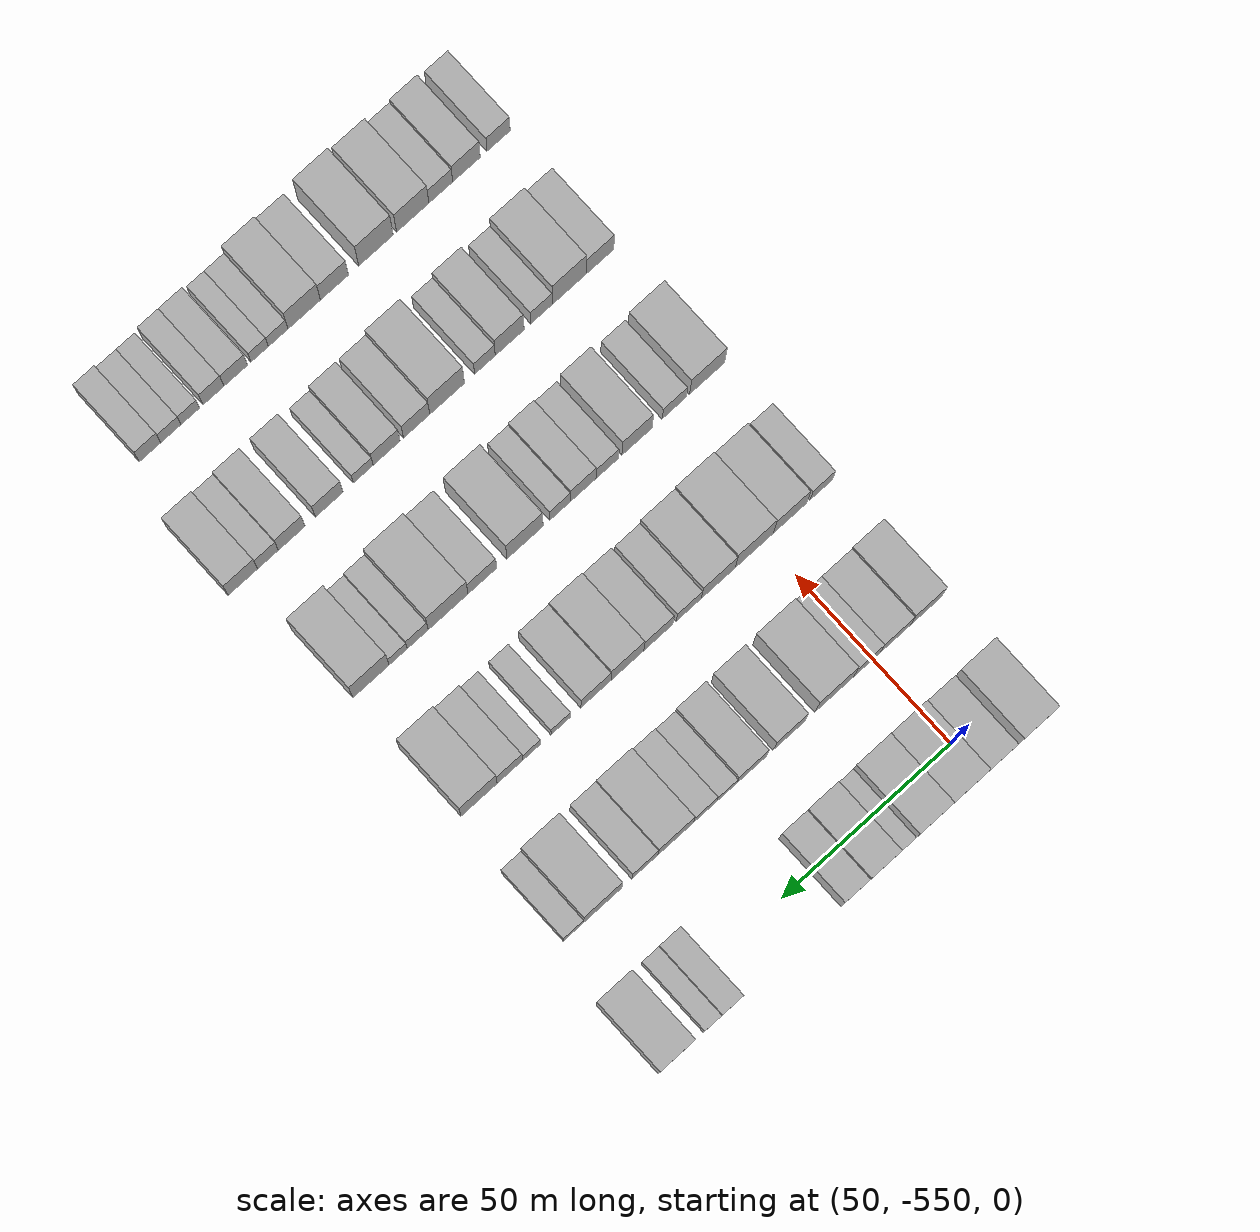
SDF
<sdf version="1.6">
 <world name="default">
  <model name="building_1">
   <static>1</static>
   <pose>50.0000 -564.8574 0 0.000000 0.000000 0.000000</pose>
   <link name="link">
    <pose>0 0 12.00 0 0 0</pose>
    <collision name="collision"><geometry><box><size>20.0000 10.2851 24.0000</size></box></geometry></collision>
    <visual name="visual">
     <cast_shadows>0</cast_shadows>
     <geometry><box><size>20.0000 10.2851 24.0000</size></box></geometry>
     <material>
      <script>
       <uri>model://HANNAS_wall/materials/scripts</uri>
       <uri>model://HANNAS_wall/materials/textures</uri>
       <name>vrc/HANNAS_wall</name>
      </script>
     </material>
    </visual>
   </link>
  </model>
  <model name="building_2">
   <static>1</static>
   <pose>50.0000 -554.3436 0 0.000000 0.000000 0.000000</pose>
   <link name="link">
    <pose>0 0 9.00 0 0 0</pose>
    <collision name="collision"><geometry><box><size>20.0000 8.7425 18.0000</size></box></geometry></collision>
    <visual name="visual">
     <cast_shadows>0</cast_shadows>
     <geometry><box><size>20.0000 8.7425 18.0000</size></box></geometry>
     <material>
      <script>
       <uri>model://HANNAS_wall/materials/scripts</uri>
       <uri>model://HANNAS_wall/materials/textures</uri>
       <name>vrc/HANNAS_wall</name>
      </script>
     </material>
    </visual>
   </link>
  </model>
  <model name="building_3">
   <static>1</static>
   <pose>50.0000 -544.7289 0 0.000000 0.000000 0.000000</pose>
   <link name="link">
    <pose>0 0 12.00 0 0 0</pose>
    <collision name="collision"><geometry><box><size>20.0000 10.4869 24.0000</size></box></geometry></collision>
    <visual name="visual">
     <cast_shadows>0</cast_shadows>
     <geometry><box><size>20.0000 10.4869 24.0000</size></box></geometry>
     <material>
      <script>
       <uri>model://HANNAS_wall/materials/scripts</uri>
       <uri>model://HANNAS_wall/materials/textures</uri>
       <name>vrc/HANNAS_wall</name>
      </script>
     </material>
    </visual>
   </link>
  </model>
  <model name="building_4">
   <static>1</static>
   <pose>50.0000 -534.4632 0 0.000000 0.000000 0.000000</pose>
   <link name="link">
    <pose>0 0 12.00 0 0 0</pose>
    <collision name="collision"><geometry><box><size>20.0000 10.0446 24.0000</size></box></geometry></collision>
    <visual name="visual">
     <cast_shadows>0</cast_shadows>
     <geometry><box><size>20.0000 10.0446 24.0000</size></box></geometry>
     <material>
      <script>
       <uri>model://HANNAS_wall/materials/scripts</uri>
       <uri>model://HANNAS_wall/materials/textures</uri>
       <name>vrc/HANNAS_wall</name>
      </script>
     </material>
    </visual>
   </link>
  </model>
  <model name="building_5">
   <static>1</static>
   <pose>50.0000 -526.9971 0 0.000000 0.000000 0.000000</pose>
   <link name="link">
    <pose>0 0 6.00 0 0 0</pose>
    <collision name="collision"><geometry><box><size>20.0000 4.8877 12.0000</size></box></geometry></collision>
    <visual name="visual">
     <cast_shadows>0</cast_shadows>
     <geometry><box><size>20.0000 4.8877 12.0000</size></box></geometry>
     <material>
      <script>
       <uri>model://HANNAS_wall/materials/scripts</uri>
       <uri>model://HANNAS_wall/materials/textures</uri>
       <name>vrc/HANNAS_wall</name>
      </script>
     </material>
    </visual>
   </link>
  </model>
  <model name="building_6">
   <static>1</static>
   <pose>50.0000 -520.1027 0 0.000000 0.000000 0.000000</pose>
   <link name="link">
    <pose>0 0 10.50 0 0 0</pose>
    <collision name="collision"><geometry><box><size>20.0000 8.9011 21.0000</size></box></geometry></collision>
    <visual name="visual">
     <cast_shadows>0</cast_shadows>
     <geometry><box><size>20.0000 8.9011 21.0000</size></box></geometry>
     <material>
      <script>
       <uri>model://HANNAS_wall/materials/scripts</uri>
       <uri>model://HANNAS_wall/materials/textures</uri>
       <name>vrc/HANNAS_wall</name>
      </script>
     </material>
    </visual>
   </link>
  </model>
  <model name="building_7">
   <static>1</static>
   <pose>50.0000 -511.9449 0 0.000000 0.000000 0.000000</pose>
   <link name="link">
    <pose>0 0 9.00 0 0 0</pose>
    <collision name="collision"><geometry><box><size>20.0000 7.4144 18.0000</size></box></geometry></collision>
    <visual name="visual">
     <cast_shadows>0</cast_shadows>
     <geometry><box><size>20.0000 7.4144 18.0000</size></box></geometry>
     <material>
      <script>
       <uri>model://HANNAS_wall/materials/scripts</uri>
       <uri>model://HANNAS_wall/materials/textures</uri>
       <name>vrc/HANNAS_wall</name>
      </script>
     </material>
    </visual>
   </link>
  </model>
  <model name="building_8">
   <static>1</static>
   <pose>50.0000 -475.9182 0 0.000000 0.000000 0.000000</pose>
   <link name="link">
    <pose>0 0 7.50 0 0 0</pose>
    <collision name="collision"><geometry><box><size>20.0000 6.2130 15.0000</size></box></geometry></collision>
    <visual name="visual">
     <cast_shadows>0</cast_shadows>
     <geometry><box><size>20.0000 6.2130 15.0000</size></box></geometry>
     <material>
      <script>
       <uri>model://HANNAS_wall/materials/scripts</uri>
       <uri>model://HANNAS_wall/materials/textures</uri>
       <name>vrc/HANNAS_wall</name>
      </script>
     </material>
    </visual>
   </link>
  </model>
  <model name="building_9">
   <static>1</static>
   <pose>50.0000 -470.3054 0 0.000000 0.000000 0.000000</pose>
   <link name="link">
    <pose>0 0 6.00 0 0 0</pose>
    <collision name="collision"><geometry><box><size>20.0000 5.0124 12.0000</size></box></geometry></collision>
    <visual name="visual">
     <cast_shadows>0</cast_shadows>
     <geometry><box><size>20.0000 5.0124 12.0000</size></box></geometry>
     <material>
      <script>
       <uri>model://HANNAS_wall/materials/scripts</uri>
       <uri>model://HANNAS_wall/materials/textures</uri>
       <name>vrc/HANNAS_wall</name>
      </script>
     </material>
    </visual>
   </link>
  </model>
  <model name="building_10">
   <static>1</static>
   <pose>50.0000 -459.6862 0 0.000000 0.000000 0.000000</pose>
   <link name="link">
    <pose>0 0 12.00 0 0 0</pose>
    <collision name="collision"><geometry><box><size>20.0000 10.2260 24.0000</size></box></geometry></collision>
    <visual name="visual">
     <cast_shadows>0</cast_shadows>
     <geometry><box><size>20.0000 10.2260 24.0000</size></box></geometry>
     <material>
      <script>
       <uri>model://HANNAS_wall/materials/scripts</uri>
       <uri>model://HANNAS_wall/materials/textures</uri>
       <name>vrc/HANNAS_wall</name>
      </script>
     </material>
    </visual>
   </link>
  </model>
  <model name="building_117">
   <static>1</static>
   <pose>85.0000 -565.4228 0 0.000000 0.000000 0.000000</pose>
   <link name="link">
    <pose>0 0 10.50 0 0 0</pose>
    <collision name="collision"><geometry><box><size>20.0000 9.1544 21.0000</size></box></geometry></collision>
    <visual name="visual">
     <cast_shadows>0</cast_shadows>
     <geometry><box><size>20.0000 9.1544 21.0000</size></box></geometry>
     <material>
      <script>
       <uri>model://HANNAS_wall/materials/scripts</uri>
       <uri>model://HANNAS_wall/materials/textures</uri>
       <name>vrc/HANNAS_wall</name>
      </script>
     </material>
    </visual>
   </link>
  </model>
  <model name="building_118">
   <static>1</static>
   <pose>85.0000 -556.4007 0 0.000000 0.000000 0.000000</pose>
   <link name="link">
    <pose>0 0 9.00 0 0 0</pose>
    <collision name="collision"><geometry><box><size>20.0000 8.8898 18.0000</size></box></geometry></collision>
    <visual name="visual">
     <cast_shadows>0</cast_shadows>
     <geometry><box><size>20.0000 8.8898 18.0000</size></box></geometry>
     <material>
      <script>
       <uri>model://HANNAS_wall/materials/scripts</uri>
       <uri>model://HANNAS_wall/materials/textures</uri>
       <name>vrc/HANNAS_wall</name>
      </script>
     </material>
    </visual>
   </link>
  </model>
  <model name="building_119">
   <static>1</static>
   <pose>85.0000 -547.9615 0 0.000000 0.000000 0.000000</pose>
   <link name="link">
    <pose>0 0 9.00 0 0 0</pose>
    <collision name="collision"><geometry><box><size>20.0000 7.9885 18.0000</size></box></geometry></collision>
    <visual name="visual">
     <cast_shadows>0</cast_shadows>
     <geometry><box><size>20.0000 7.9885 18.0000</size></box></geometry>
     <material>
      <script>
       <uri>model://HANNAS_wall/materials/scripts</uri>
       <uri>model://HANNAS_wall/materials/textures</uri>
       <name>vrc/HANNAS_wall</name>
      </script>
     </material>
    </visual>
   </link>
  </model>
  <model name="building_120">
   <static>1</static>
   <pose>85.0000 -538.2879 0 0.000000 0.000000 0.000000</pose>
   <link name="link">
    <pose>0 0 12.00 0 0 0</pose>
    <collision name="collision"><geometry><box><size>20.0000 11.3588 24.0000</size></box></geometry></collision>
    <visual name="visual">
     <cast_shadows>0</cast_shadows>
     <geometry><box><size>20.0000 11.3588 24.0000</size></box></geometry>
     <material>
      <script>
       <uri>model://HANNAS_wall/materials/scripts</uri>
       <uri>model://HANNAS_wall/materials/textures</uri>
       <name>vrc/HANNAS_wall</name>
      </script>
     </material>
    </visual>
   </link>
  </model>
  <model name="building_121">
   <static>1</static>
   <pose>85.0000 -524.9538 0 0.000000 0.000000 0.000000</pose>
   <link name="link">
    <pose>0 0 10.50 0 0 0</pose>
    <collision name="collision"><geometry><box><size>20.0000 9.3093 21.0000</size></box></geometry></collision>
    <visual name="visual">
     <cast_shadows>0</cast_shadows>
     <geometry><box><size>20.0000 9.3093 21.0000</size></box></geometry>
     <material>
      <script>
       <uri>model://HANNAS_wall/materials/scripts</uri>
       <uri>model://HANNAS_wall/materials/textures</uri>
       <name>vrc/HANNAS_wall</name>
      </script>
     </material>
    </visual>
   </link>
  </model>
  <model name="building_122">
   <static>1</static>
   <pose>85.0000 -513.9254 0 0.000000 0.000000 0.000000</pose>
   <link name="link">
    <pose>0 0 9.00 0 0 0</pose>
    <collision name="collision"><geometry><box><size>20.0000 8.7477 18.0000</size></box></geometry></collision>
    <visual name="visual">
     <cast_shadows>0</cast_shadows>
     <geometry><box><size>20.0000 8.7477 18.0000</size></box></geometry>
     <material>
      <script>
       <uri>model://HANNAS_wall/materials/scripts</uri>
       <uri>model://HANNAS_wall/materials/textures</uri>
       <name>vrc/HANNAS_wall</name>
      </script>
     </material>
    </visual>
   </link>
  </model>
  <model name="building_123">
   <static>1</static>
   <pose>85.0000 -506.5690 0 0.000000 0.000000 0.000000</pose>
   <link name="link">
    <pose>0 0 6.00 0 0 0</pose>
    <collision name="collision"><geometry><box><size>20.0000 5.9650 12.0000</size></box></geometry></collision>
    <visual name="visual">
     <cast_shadows>0</cast_shadows>
     <geometry><box><size>20.0000 5.9650 12.0000</size></box></geometry>
     <material>
      <script>
       <uri>model://HANNAS_wall/materials/scripts</uri>
       <uri>model://HANNAS_wall/materials/textures</uri>
       <name>vrc/HANNAS_wall</name>
      </script>
     </material>
    </visual>
   </link>
  </model>
  <model name="building_124">
   <static>1</static>
   <pose>85.0000 -500.1375 0 0.000000 0.000000 0.000000</pose>
   <link name="link">
    <pose>0 0 7.50 0 0 0</pose>
    <collision name="collision"><geometry><box><size>20.0000 6.8981 15.0000</size></box></geometry></collision>
    <visual name="visual">
     <cast_shadows>0</cast_shadows>
     <geometry><box><size>20.0000 6.8981 15.0000</size></box></geometry>
     <material>
      <script>
       <uri>model://HANNAS_wall/materials/scripts</uri>
       <uri>model://HANNAS_wall/materials/textures</uri>
       <name>vrc/HANNAS_wall</name>
      </script>
     </material>
    </visual>
   </link>
  </model>
  <model name="building_125">
   <static>1</static>
   <pose>85.0000 -491.4752 0 0.000000 0.000000 0.000000</pose>
   <link name="link">
    <pose>0 0 10.50 0 0 0</pose>
    <collision name="collision"><geometry><box><size>20.0000 10.4264 21.0000</size></box></geometry></collision>
    <visual name="visual">
     <cast_shadows>0</cast_shadows>
     <geometry><box><size>20.0000 10.4264 21.0000</size></box></geometry>
     <material>
      <script>
       <uri>model://HANNAS_wall/materials/scripts</uri>
       <uri>model://HANNAS_wall/materials/textures</uri>
       <name>vrc/HANNAS_wall</name>
      </script>
     </material>
    </visual>
   </link>
  </model>
  <model name="building_126">
   <static>1</static>
   <pose>85.0000 -482.4904 0 0.000000 0.000000 0.000000</pose>
   <link name="link">
    <pose>0 0 9.00 0 0 0</pose>
    <collision name="collision"><geometry><box><size>20.0000 7.5432 18.0000</size></box></geometry></collision>
    <visual name="visual">
     <cast_shadows>0</cast_shadows>
     <geometry><box><size>20.0000 7.5432 18.0000</size></box></geometry>
     <material>
      <script>
       <uri>model://HANNAS_wall/materials/scripts</uri>
       <uri>model://HANNAS_wall/materials/textures</uri>
       <name>vrc/HANNAS_wall</name>
      </script>
     </material>
    </visual>
   </link>
  </model>
  <model name="building_127">
   <static>1</static>
   <pose>85.0000 -470.1448 0 0.000000 0.000000 0.000000</pose>
   <link name="link">
    <pose>0 0 12.00 0 0 0</pose>
    <collision name="collision"><geometry><box><size>20.0000 11.1481 24.0000</size></box></geometry></collision>
    <visual name="visual">
     <cast_shadows>0</cast_shadows>
     <geometry><box><size>20.0000 11.1481 24.0000</size></box></geometry>
     <material>
      <script>
       <uri>model://HANNAS_wall/materials/scripts</uri>
       <uri>model://HANNAS_wall/materials/textures</uri>
       <name>vrc/HANNAS_wall</name>
      </script>
     </material>
    </visual>
   </link>
  </model>
  <model name="building_128">
   <static>1</static>
   <pose>85.0000 -461.6063 0 0.000000 0.000000 0.000000</pose>
   <link name="link">
    <pose>0 0 6.00 0 0 0</pose>
    <collision name="collision"><geometry><box><size>20.0000 5.9288 12.0000</size></box></geometry></collision>
    <visual name="visual">
     <cast_shadows>0</cast_shadows>
     <geometry><box><size>20.0000 5.9288 12.0000</size></box></geometry>
     <material>
      <script>
       <uri>model://HANNAS_wall/materials/scripts</uri>
       <uri>model://HANNAS_wall/materials/textures</uri>
       <name>vrc/HANNAS_wall</name>
      </script>
     </material>
    </visual>
   </link>
  </model>
  <model name="building_239">
   <static>1</static>
   <pose>120.0000 -566.6684 0 0.000000 0.000000 0.000000</pose>
   <link name="link">
    <pose>0 0 7.50 0 0 0</pose>
    <collision name="collision"><geometry><box><size>20.0000 6.6632 15.0000</size></box></geometry></collision>
    <visual name="visual">
     <cast_shadows>0</cast_shadows>
     <geometry><box><size>20.0000 6.6632 15.0000</size></box></geometry>
     <material>
      <script>
       <uri>model://HANNAS_wall/materials/scripts</uri>
       <uri>model://HANNAS_wall/materials/textures</uri>
       <name>vrc/HANNAS_wall</name>
      </script>
     </material>
    </visual>
   </link>
  </model>
  <model name="building_240">
   <static>1</static>
   <pose>120.0000 -557.3734 0 0.000000 0.000000 0.000000</pose>
   <link name="link">
    <pose>0 0 10.50 0 0 0</pose>
    <collision name="collision"><geometry><box><size>20.0000 9.9268 21.0000</size></box></geometry></collision>
    <visual name="visual">
     <cast_shadows>0</cast_shadows>
     <geometry><box><size>20.0000 9.9268 21.0000</size></box></geometry>
     <material>
      <script>
       <uri>model://HANNAS_wall/materials/scripts</uri>
       <uri>model://HANNAS_wall/materials/textures</uri>
       <name>vrc/HANNAS_wall</name>
      </script>
     </material>
    </visual>
   </link>
  </model>
  <model name="building_241">
   <static>1</static>
   <pose>120.0000 -546.7569 0 0.000000 0.000000 0.000000</pose>
   <link name="link">
    <pose>0 0 12.00 0 0 0</pose>
    <collision name="collision"><geometry><box><size>20.0000 11.3060 24.0000</size></box></geometry></collision>
    <visual name="visual">
     <cast_shadows>0</cast_shadows>
     <geometry><box><size>20.0000 11.3060 24.0000</size></box></geometry>
     <material>
      <script>
       <uri>model://HANNAS_wall/materials/scripts</uri>
       <uri>model://HANNAS_wall/materials/textures</uri>
       <name>vrc/HANNAS_wall</name>
      </script>
     </material>
    </visual>
   </link>
  </model>
  <model name="building_242">
   <static>1</static>
   <pose>120.0000 -536.0816 0 0.000000 0.000000 0.000000</pose>
   <link name="link">
    <pose>0 0 10.50 0 0 0</pose>
    <collision name="collision"><geometry><box><size>20.0000 10.0446 21.0000</size></box></geometry></collision>
    <visual name="visual">
     <cast_shadows>0</cast_shadows>
     <geometry><box><size>20.0000 10.0446 21.0000</size></box></geometry>
     <material>
      <script>
       <uri>model://HANNAS_wall/materials/scripts</uri>
       <uri>model://HANNAS_wall/materials/textures</uri>
       <name>vrc/HANNAS_wall</name>
      </script>
     </material>
    </visual>
   </link>
  </model>
  <model name="building_243">
   <static>1</static>
   <pose>120.0000 -527.3679 0 0.000000 0.000000 0.000000</pose>
   <link name="link">
    <pose>0 0 7.50 0 0 0</pose>
    <collision name="collision"><geometry><box><size>20.0000 7.3827 15.0000</size></box></geometry></collision>
    <visual name="visual">
     <cast_shadows>0</cast_shadows>
     <geometry><box><size>20.0000 7.3827 15.0000</size></box></geometry>
     <material>
      <script>
       <uri>model://HANNAS_wall/materials/scripts</uri>
       <uri>model://HANNAS_wall/materials/textures</uri>
       <name>vrc/HANNAS_wall</name>
      </script>
     </material>
    </visual>
   </link>
  </model>
  <model name="building_244">
   <static>1</static>
   <pose>120.0000 -518.3894 0 0.000000 0.000000 0.000000</pose>
   <link name="link">
    <pose>0 0 9.00 0 0 0</pose>
    <collision name="collision"><geometry><box><size>20.0000 8.5743 18.0000</size></box></geometry></collision>
    <visual name="visual">
     <cast_shadows>0</cast_shadows>
     <geometry><box><size>20.0000 8.5743 18.0000</size></box></geometry>
     <material>
      <script>
       <uri>model://HANNAS_wall/materials/scripts</uri>
       <uri>model://HANNAS_wall/materials/textures</uri>
       <name>vrc/HANNAS_wall</name>
      </script>
     </material>
    </visual>
   </link>
  </model>
  <model name="building_245">
   <static>1</static>
   <pose>120.0000 -509.2628 0 0.000000 0.000000 0.000000</pose>
   <link name="link">
    <pose>0 0 10.50 0 0 0</pose>
    <collision name="collision"><geometry><box><size>20.0000 9.6789 21.0000</size></box></geometry></collision>
    <visual name="visual">
     <cast_shadows>0</cast_shadows>
     <geometry><box><size>20.0000 9.6789 21.0000</size></box></geometry>
     <material>
      <script>
       <uri>model://HANNAS_wall/materials/scripts</uri>
       <uri>model://HANNAS_wall/materials/textures</uri>
       <name>vrc/HANNAS_wall</name>
      </script>
     </material>
    </visual>
   </link>
  </model>
  <model name="building_246">
   <static>1</static>
   <pose>120.0000 -500.0014 0 0.000000 0.000000 0.000000</pose>
   <link name="link">
    <pose>0 0 9.00 0 0 0</pose>
    <collision name="collision"><geometry><box><size>20.0000 8.8440 18.0000</size></box></geometry></collision>
    <visual name="visual">
     <cast_shadows>0</cast_shadows>
     <geometry><box><size>20.0000 8.8440 18.0000</size></box></geometry>
     <material>
      <script>
       <uri>model://HANNAS_wall/materials/scripts</uri>
       <uri>model://HANNAS_wall/materials/textures</uri>
       <name>vrc/HANNAS_wall</name>
      </script>
     </material>
    </visual>
   </link>
  </model>
  <model name="building_247">
   <static>1</static>
   <pose>120.0000 -489.6946 0 0.000000 0.000000 0.000000</pose>
   <link name="link">
    <pose>0 0 6.00 0 0 0</pose>
    <collision name="collision"><geometry><box><size>20.0000 5.7695 12.0000</size></box></geometry></collision>
    <visual name="visual">
     <cast_shadows>0</cast_shadows>
     <geometry><box><size>20.0000 5.7695 12.0000</size></box></geometry>
     <material>
      <script>
       <uri>model://HANNAS_wall/materials/scripts</uri>
       <uri>model://HANNAS_wall/materials/textures</uri>
       <name>vrc/HANNAS_wall</name>
      </script>
     </material>
    </visual>
   </link>
  </model>
  <model name="building_248">
   <static>1</static>
   <pose>120.0000 -481.1360 0 0.000000 0.000000 0.000000</pose>
   <link name="link">
    <pose>0 0 6.00 0 0 0</pose>
    <collision name="collision"><geometry><box><size>20.0000 5.3477 12.0000</size></box></geometry></collision>
    <visual name="visual">
     <cast_shadows>0</cast_shadows>
     <geometry><box><size>20.0000 5.3477 12.0000</size></box></geometry>
     <material>
      <script>
       <uri>model://HANNAS_wall/materials/scripts</uri>
       <uri>model://HANNAS_wall/materials/textures</uri>
       <name>vrc/HANNAS_wall</name>
      </script>
     </material>
    </visual>
   </link>
  </model>
  <model name="building_249">
   <static>1</static>
   <pose>120.0000 -474.7338 0 0.000000 0.000000 0.000000</pose>
   <link name="link">
    <pose>0 0 9.00 0 0 0</pose>
    <collision name="collision"><geometry><box><size>20.0000 7.4567 18.0000</size></box></geometry></collision>
    <visual name="visual">
     <cast_shadows>0</cast_shadows>
     <geometry><box><size>20.0000 7.4567 18.0000</size></box></geometry>
     <material>
      <script>
       <uri>model://HANNAS_wall/materials/scripts</uri>
       <uri>model://HANNAS_wall/materials/textures</uri>
       <name>vrc/HANNAS_wall</name>
      </script>
     </material>
    </visual>
   </link>
  </model>
  <model name="building_250">
   <static>1</static>
   <pose>120.0000 -465.7179 0 0.000000 0.000000 0.000000</pose>
   <link name="link">
    <pose>0 0 12.00 0 0 0</pose>
    <collision name="collision"><geometry><box><size>20.0000 10.5751 24.0000</size></box></geometry></collision>
    <visual name="visual">
     <cast_shadows>0</cast_shadows>
     <geometry><box><size>20.0000 10.5751 24.0000</size></box></geometry>
     <material>
      <script>
       <uri>model://HANNAS_wall/materials/scripts</uri>
       <uri>model://HANNAS_wall/materials/textures</uri>
       <name>vrc/HANNAS_wall</name>
      </script>
     </material>
    </visual>
   </link>
  </model>
  <model name="building_360">
   <static>1</static>
   <pose>155.0000 -564.8041 0 0.000000 0.000000 0.000000</pose>
   <link name="link">
    <pose>0 0 10.50 0 0 0</pose>
    <collision name="collision"><geometry><box><size>20.0000 10.3919 21.0000</size></box></geometry></collision>
    <visual name="visual">
     <cast_shadows>0</cast_shadows>
     <geometry><box><size>20.0000 10.3919 21.0000</size></box></geometry>
     <material>
      <script>
       <uri>model://HANNAS_wall/materials/scripts</uri>
       <uri>model://HANNAS_wall/materials/textures</uri>
       <name>vrc/HANNAS_wall</name>
      </script>
     </material>
    </visual>
   </link>
  </model>
  <model name="building_361">
   <static>1</static>
   <pose>155.0000 -555.0547 0 0.000000 0.000000 0.000000</pose>
   <link name="link">
    <pose>0 0 7.50 0 0 0</pose>
    <collision name="collision"><geometry><box><size>20.0000 7.1068 15.0000</size></box></geometry></collision>
    <visual name="visual">
     <cast_shadows>0</cast_shadows>
     <geometry><box><size>20.0000 7.1068 15.0000</size></box></geometry>
     <material>
      <script>
       <uri>model://HANNAS_wall/materials/scripts</uri>
       <uri>model://HANNAS_wall/materials/textures</uri>
       <name>vrc/HANNAS_wall</name>
      </script>
     </material>
    </visual>
   </link>
  </model>
  <model name="building_362">
   <static>1</static>
   <pose>155.0000 -544.0210 0 0.000000 0.000000 0.000000</pose>
   <link name="link">
    <pose>0 0 10.50 0 0 0</pose>
    <collision name="collision"><geometry><box><size>20.0000 8.9606 21.0000</size></box></geometry></collision>
    <visual name="visual">
     <cast_shadows>0</cast_shadows>
     <geometry><box><size>20.0000 8.9606 21.0000</size></box></geometry>
     <material>
      <script>
       <uri>model://HANNAS_wall/materials/scripts</uri>
       <uri>model://HANNAS_wall/materials/textures</uri>
       <name>vrc/HANNAS_wall</name>
      </script>
     </material>
    </visual>
   </link>
  </model>
  <model name="building_363">
   <static>1</static>
   <pose>155.0000 -535.2094 0 0.000000 0.000000 0.000000</pose>
   <link name="link">
    <pose>0 0 7.50 0 0 0</pose>
    <collision name="collision"><geometry><box><size>20.0000 6.6625 15.0000</size></box></geometry></collision>
    <visual name="visual">
     <cast_shadows>0</cast_shadows>
     <geometry><box><size>20.0000 6.6625 15.0000</size></box></geometry>
     <material>
      <script>
       <uri>model://HANNAS_wall/materials/scripts</uri>
       <uri>model://HANNAS_wall/materials/textures</uri>
       <name>vrc/HANNAS_wall</name>
      </script>
     </material>
    </visual>
   </link>
  </model>
  <model name="building_364">
   <static>1</static>
   <pose>155.0000 -528.1210 0 0.000000 0.000000 0.000000</pose>
   <link name="link">
    <pose>0 0 9.00 0 0 0</pose>
    <collision name="collision"><geometry><box><size>20.0000 7.5143 18.0000</size></box></geometry></collision>
    <visual name="visual">
     <cast_shadows>0</cast_shadows>
     <geometry><box><size>20.0000 7.5143 18.0000</size></box></geometry>
     <material>
      <script>
       <uri>model://HANNAS_wall/materials/scripts</uri>
       <uri>model://HANNAS_wall/materials/textures</uri>
       <name>vrc/HANNAS_wall</name>
      </script>
     </material>
    </visual>
   </link>
  </model>
  <model name="building_365">
   <static>1</static>
   <pose>155.0000 -521.3062 0 0.000000 0.000000 0.000000</pose>
   <link name="link">
    <pose>0 0 7.50 0 0 0</pose>
    <collision name="collision"><geometry><box><size>20.0000 6.1153 15.0000</size></box></geometry></collision>
    <visual name="visual">
     <cast_shadows>0</cast_shadows>
     <geometry><box><size>20.0000 6.1153 15.0000</size></box></geometry>
     <material>
      <script>
       <uri>model://HANNAS_wall/materials/scripts</uri>
       <uri>model://HANNAS_wall/materials/textures</uri>
       <name>vrc/HANNAS_wall</name>
      </script>
     </material>
    </visual>
   </link>
  </model>
  <model name="building_366">
   <static>1</static>
   <pose>155.0000 -510.9101 0 0.000000 0.000000 0.000000</pose>
   <link name="link">
    <pose>0 0 12.00 0 0 0</pose>
    <collision name="collision"><geometry><box><size>20.0000 10.6769 24.0000</size></box></geometry></collision>
    <visual name="visual">
     <cast_shadows>0</cast_shadows>
     <geometry><box><size>20.0000 10.6769 24.0000</size></box></geometry>
     <material>
      <script>
       <uri>model://HANNAS_wall/materials/scripts</uri>
       <uri>model://HANNAS_wall/materials/textures</uri>
       <name>vrc/HANNAS_wall</name>
      </script>
     </material>
    </visual>
   </link>
  </model>
  <model name="building_367">
   <static>1</static>
   <pose>155.0000 -498.3504 0 0.000000 0.000000 0.000000</pose>
   <link name="link">
    <pose>0 0 9.00 0 0 0</pose>
    <collision name="collision"><geometry><box><size>20.0000 8.4424 18.0000</size></box></geometry></collision>
    <visual name="visual">
     <cast_shadows>0</cast_shadows>
     <geometry><box><size>20.0000 8.4424 18.0000</size></box></geometry>
     <material>
      <script>
       <uri>model://HANNAS_wall/materials/scripts</uri>
       <uri>model://HANNAS_wall/materials/textures</uri>
       <name>vrc/HANNAS_wall</name>
      </script>
     </material>
    </visual>
   </link>
  </model>
  <model name="building_368">
   <static>1</static>
   <pose>155.0000 -488.3022 0 0.000000 0.000000 0.000000</pose>
   <link name="link">
    <pose>0 0 12.00 0 0 0</pose>
    <collision name="collision"><geometry><box><size>20.0000 11.6539 24.0000</size></box></geometry></collision>
    <visual name="visual">
     <cast_shadows>0</cast_shadows>
     <geometry><box><size>20.0000 11.6539 24.0000</size></box></geometry>
     <material>
      <script>
       <uri>model://HANNAS_wall/materials/scripts</uri>
       <uri>model://HANNAS_wall/materials/textures</uri>
       <name>vrc/HANNAS_wall</name>
      </script>
     </material>
    </visual>
   </link>
  </model>
  <model name="building_369">
   <static>1</static>
   <pose>155.0000 -479.3861 0 0.000000 0.000000 0.000000</pose>
   <link name="link">
    <pose>0 0 7.50 0 0 0</pose>
    <collision name="collision"><geometry><box><size>20.0000 6.1784 15.0000</size></box></geometry></collision>
    <visual name="visual">
     <cast_shadows>0</cast_shadows>
     <geometry><box><size>20.0000 6.1784 15.0000</size></box></geometry>
     <material>
      <script>
       <uri>model://HANNAS_wall/materials/scripts</uri>
       <uri>model://HANNAS_wall/materials/textures</uri>
       <name>vrc/HANNAS_wall</name>
      </script>
     </material>
    </visual>
   </link>
  </model>
  <model name="building_370">
   <static>1</static>
   <pose>155.0000 -473.6265 0 0.000000 0.000000 0.000000</pose>
   <link name="link">
    <pose>0 0 6.00 0 0 0</pose>
    <collision name="collision"><geometry><box><size>20.0000 5.3407 12.0000</size></box></geometry></collision>
    <visual name="visual">
     <cast_shadows>0</cast_shadows>
     <geometry><box><size>20.0000 5.3407 12.0000</size></box></geometry>
     <material>
      <script>
       <uri>model://HANNAS_wall/materials/scripts</uri>
       <uri>model://HANNAS_wall/materials/textures</uri>
       <name>vrc/HANNAS_wall</name>
      </script>
     </material>
    </visual>
   </link>
  </model>
  <model name="building_371">
   <static>1</static>
   <pose>155.0000 -465.6482 0 0.000000 0.000000 0.000000</pose>
   <link name="link">
    <pose>0 0 12.00 0 0 0</pose>
    <collision name="collision"><geometry><box><size>20.0000 10.6160 24.0000</size></box></geometry></collision>
    <visual name="visual">
     <cast_shadows>0</cast_shadows>
     <geometry><box><size>20.0000 10.6160 24.0000</size></box></geometry>
     <material>
      <script>
       <uri>model://HANNAS_wall/materials/scripts</uri>
       <uri>model://HANNAS_wall/materials/textures</uri>
       <name>vrc/HANNAS_wall</name>
      </script>
     </material>
    </visual>
   </link>
  </model>
  <model name="building_484">
   <static>1</static>
   <pose>190.0000 -564.9375 0 0.000000 0.000000 0.000000</pose>
   <link name="link">
    <pose>0 0 9.00 0 0 0</pose>
    <collision name="collision"><geometry><box><size>20.0000 8.1251 18.0000</size></box></geometry></collision>
    <visual name="visual">
     <cast_shadows>0</cast_shadows>
     <geometry><box><size>20.0000 8.1251 18.0000</size></box></geometry>
     <material>
      <script>
       <uri>model://HANNAS_wall/materials/scripts</uri>
       <uri>model://HANNAS_wall/materials/textures</uri>
       <name>vrc/HANNAS_wall</name>
      </script>
     </material>
    </visual>
   </link>
  </model>
  <model name="building_485">
   <static>1</static>
   <pose>190.0000 -555.8092 0 0.000000 0.000000 0.000000</pose>
   <link name="link">
    <pose>0 0 12.00 0 0 0</pose>
    <collision name="collision"><geometry><box><size>20.0000 10.1315 24.0000</size></box></geometry></collision>
    <visual name="visual">
     <cast_shadows>0</cast_shadows>
     <geometry><box><size>20.0000 10.1315 24.0000</size></box></geometry>
     <material>
      <script>
       <uri>model://HANNAS_wall/materials/scripts</uri>
       <uri>model://HANNAS_wall/materials/textures</uri>
       <name>vrc/HANNAS_wall</name>
      </script>
     </material>
    </visual>
   </link>
  </model>
  <model name="building_486">
   <static>1</static>
   <pose>190.0000 -547.5752 0 0.000000 0.000000 0.000000</pose>
   <link name="link">
    <pose>0 0 7.50 0 0 0</pose>
    <collision name="collision"><geometry><box><size>20.0000 6.3365 15.0000</size></box></geometry></collision>
    <visual name="visual">
     <cast_shadows>0</cast_shadows>
     <geometry><box><size>20.0000 6.3365 15.0000</size></box></geometry>
     <material>
      <script>
       <uri>model://HANNAS_wall/materials/scripts</uri>
       <uri>model://HANNAS_wall/materials/textures</uri>
       <name>vrc/HANNAS_wall</name>
      </script>
     </material>
    </visual>
   </link>
  </model>
  <model name="building_487">
   <static>1</static>
   <pose>190.0000 -538.1331 0 0.000000 0.000000 0.000000</pose>
   <link name="link">
    <pose>0 0 10.50 0 0 0</pose>
    <collision name="collision"><geometry><box><size>20.0000 8.5477 21.0000</size></box></geometry></collision>
    <visual name="visual">
     <cast_shadows>0</cast_shadows>
     <geometry><box><size>20.0000 8.5477 21.0000</size></box></geometry>
     <material>
      <script>
       <uri>model://HANNAS_wall/materials/scripts</uri>
       <uri>model://HANNAS_wall/materials/textures</uri>
       <name>vrc/HANNAS_wall</name>
      </script>
     </material>
    </visual>
   </link>
  </model>
  <model name="building_488">
   <static>1</static>
   <pose>190.0000 -530.8043 0 0.000000 0.000000 0.000000</pose>
   <link name="link">
    <pose>0 0 7.50 0 0 0</pose>
    <collision name="collision"><geometry><box><size>20.0000 6.1099 15.0000</size></box></geometry></collision>
    <visual name="visual">
     <cast_shadows>0</cast_shadows>
     <geometry><box><size>20.0000 6.1099 15.0000</size></box></geometry>
     <material>
      <script>
       <uri>model://HANNAS_wall/materials/scripts</uri>
       <uri>model://HANNAS_wall/materials/textures</uri>
       <name>vrc/HANNAS_wall</name>
      </script>
     </material>
    </visual>
   </link>
  </model>
  <model name="building_489">
   <static>1</static>
   <pose>190.0000 -519.6268 0 0.000000 0.000000 0.000000</pose>
   <link name="link">
    <pose>0 0 12.00 0 0 0</pose>
    <collision name="collision"><geometry><box><size>20.0000 10.2451 24.0000</size></box></geometry></collision>
    <visual name="visual">
     <cast_shadows>0</cast_shadows>
     <geometry><box><size>20.0000 10.2451 24.0000</size></box></geometry>
     <material>
      <script>
       <uri>model://HANNAS_wall/materials/scripts</uri>
       <uri>model://HANNAS_wall/materials/textures</uri>
       <name>vrc/HANNAS_wall</name>
      </script>
     </material>
    </visual>
   </link>
  </model>
  <model name="building_490">
   <static>1</static>
   <pose>190.0000 -510.6244 0 0.000000 0.000000 0.000000</pose>
   <link name="link">
    <pose>0 0 9.00 0 0 0</pose>
    <collision name="collision"><geometry><box><size>20.0000 7.7596 18.0000</size></box></geometry></collision>
    <visual name="visual">
     <cast_shadows>0</cast_shadows>
     <geometry><box><size>20.0000 7.7596 18.0000</size></box></geometry>
     <material>
      <script>
       <uri>model://HANNAS_wall/materials/scripts</uri>
       <uri>model://HANNAS_wall/materials/textures</uri>
       <name>vrc/HANNAS_wall</name>
      </script>
     </material>
    </visual>
   </link>
  </model>
  <model name="building_491">
   <static>1</static>
   <pose>190.0000 -501.7688 0 0.000000 0.000000 0.000000</pose>
   <link name="link">
    <pose>0 0 9.00 0 0 0</pose>
    <collision name="collision"><geometry><box><size>20.0000 7.9517 18.0000</size></box></geometry></collision>
    <visual name="visual">
     <cast_shadows>0</cast_shadows>
     <geometry><box><size>20.0000 7.9517 18.0000</size></box></geometry>
     <material>
      <script>
       <uri>model://HANNAS_wall/materials/scripts</uri>
       <uri>model://HANNAS_wall/materials/textures</uri>
       <name>vrc/HANNAS_wall</name>
      </script>
     </material>
    </visual>
   </link>
  </model>
  <model name="building_492">
   <static>1</static>
   <pose>190.0000 -494.8741 0 0.000000 0.000000 0.000000</pose>
   <link name="link">
    <pose>0 0 6.00 0 0 0</pose>
    <collision name="collision"><geometry><box><size>20.0000 5.8378 12.0000</size></box></geometry></collision>
    <visual name="visual">
     <cast_shadows>0</cast_shadows>
     <geometry><box><size>20.0000 5.8378 12.0000</size></box></geometry>
     <material>
      <script>
       <uri>model://HANNAS_wall/materials/scripts</uri>
       <uri>model://HANNAS_wall/materials/textures</uri>
       <name>vrc/HANNAS_wall</name>
      </script>
     </material>
    </visual>
   </link>
  </model>
  <model name="building_493">
   <static>1</static>
   <pose>190.0000 -484.8766 0 0.000000 0.000000 0.000000</pose>
   <link name="link">
    <pose>0 0 9.00 0 0 0</pose>
    <collision name="collision"><geometry><box><size>20.0000 8.1571 18.0000</size></box></geometry></collision>
    <visual name="visual">
     <cast_shadows>0</cast_shadows>
     <geometry><box><size>20.0000 8.1571 18.0000</size></box></geometry>
     <material>
      <script>
       <uri>model://HANNAS_wall/materials/scripts</uri>
       <uri>model://HANNAS_wall/materials/textures</uri>
       <name>vrc/HANNAS_wall</name>
      </script>
     </material>
    </visual>
   </link>
  </model>
  <model name="building_494">
   <static>1</static>
   <pose>190.0000 -473.8703 0 0.000000 0.000000 0.000000</pose>
   <link name="link">
    <pose>0 0 9.00 0 0 0</pose>
    <collision name="collision"><geometry><box><size>20.0000 7.8554 18.0000</size></box></geometry></collision>
    <visual name="visual">
     <cast_shadows>0</cast_shadows>
     <geometry><box><size>20.0000 7.8554 18.0000</size></box></geometry>
     <material>
      <script>
       <uri>model://HANNAS_wall/materials/scripts</uri>
       <uri>model://HANNAS_wall/materials/textures</uri>
       <name>vrc/HANNAS_wall</name>
      </script>
     </material>
    </visual>
   </link>
  </model>
  <model name="building_495">
   <static>1</static>
   <pose>190.0000 -466.8979 0 0.000000 0.000000 0.000000</pose>
   <link name="link">
    <pose>0 0 7.50 0 0 0</pose>
    <collision name="collision"><geometry><box><size>20.0000 6.0896 15.0000</size></box></geometry></collision>
    <visual name="visual">
     <cast_shadows>0</cast_shadows>
     <geometry><box><size>20.0000 6.0896 15.0000</size></box></geometry>
     <material>
      <script>
       <uri>model://HANNAS_wall/materials/scripts</uri>
       <uri>model://HANNAS_wall/materials/textures</uri>
       <name>vrc/HANNAS_wall</name>
      </script>
     </material>
    </visual>
   </link>
  </model>
  <model name="building_496">
   <static>1</static>
   <pose>190.0000 -459.5322 0 0.000000 0.000000 0.000000</pose>
   <link name="link">
    <pose>0 0 9.00 0 0 0</pose>
    <collision name="collision"><geometry><box><size>20.0000 8.6418 18.0000</size></box></geometry></collision>
    <visual name="visual">
     <cast_shadows>0</cast_shadows>
     <geometry><box><size>20.0000 8.6418 18.0000</size></box></geometry>
     <material>
      <script>
       <uri>model://HANNAS_wall/materials/scripts</uri>
       <uri>model://HANNAS_wall/materials/textures</uri>
       <name>vrc/HANNAS_wall</name>
      </script>
     </material>
    </visual>
   </link>
  </model>
  <model name="building_612">
   <static>1</static>
   <pose>225.0000 -566.5411 0 0.000000 0.000000 0.000000</pose>
   <link name="link">
    <pose>0 0 7.50 0 0 0</pose>
    <collision name="collision"><geometry><box><size>20.0000 6.9178 15.0000</size></box></geometry></collision>
    <visual name="visual">
     <cast_shadows>0</cast_shadows>
     <geometry><box><size>20.0000 6.9178 15.0000</size></box></geometry>
     <material>
      <script>
       <uri>model://HANNAS_wall/materials/scripts</uri>
       <uri>model://HANNAS_wall/materials/textures</uri>
       <name>vrc/HANNAS_wall</name>
      </script>
     </material>
    </visual>
   </link>
  </model>
  <model name="building_613">
   <static>1</static>
   <pose>225.0000 -556.9927 0 0.000000 0.000000 0.000000</pose>
   <link name="link">
    <pose>0 0 9.00 0 0 0</pose>
    <collision name="collision"><geometry><box><size>20.0000 8.1790 18.0000</size></box></geometry></collision>
    <visual name="visual">
     <cast_shadows>0</cast_shadows>
     <geometry><box><size>20.0000 8.1790 18.0000</size></box></geometry>
     <material>
      <script>
       <uri>model://HANNAS_wall/materials/scripts</uri>
       <uri>model://HANNAS_wall/materials/textures</uri>
       <name>vrc/HANNAS_wall</name>
      </script>
     </material>
    </visual>
   </link>
  </model>
  <model name="building_614">
   <static>1</static>
   <pose>225.0000 -549.3812 0 0.000000 0.000000 0.000000</pose>
   <link name="link">
    <pose>0 0 7.50 0 0 0</pose>
    <collision name="collision"><geometry><box><size>20.0000 7.0439 15.0000</size></box></geometry></collision>
    <visual name="visual">
     <cast_shadows>0</cast_shadows>
     <geometry><box><size>20.0000 7.0439 15.0000</size></box></geometry>
     <material>
      <script>
       <uri>model://HANNAS_wall/materials/scripts</uri>
       <uri>model://HANNAS_wall/materials/textures</uri>
       <name>vrc/HANNAS_wall</name>
      </script>
     </material>
    </visual>
   </link>
  </model>
  <model name="building_615">
   <static>1</static>
   <pose>225.0000 -541.0646 0 0.000000 0.000000 0.000000</pose>
   <link name="link">
    <pose>0 0 10.50 0 0 0</pose>
    <collision name="collision"><geometry><box><size>20.0000 9.5894 21.0000</size></box></geometry></collision>
    <visual name="visual">
     <cast_shadows>0</cast_shadows>
     <geometry><box><size>20.0000 9.5894 21.0000</size></box></geometry>
     <material>
      <script>
       <uri>model://HANNAS_wall/materials/scripts</uri>
       <uri>model://HANNAS_wall/materials/textures</uri>
       <name>vrc/HANNAS_wall</name>
      </script>
     </material>
    </visual>
   </link>
  </model>
  <model name="building_616">
   <static>1</static>
   <pose>225.0000 -530.1628 0 0.000000 0.000000 0.000000</pose>
   <link name="link">
    <pose>0 0 12.00 0 0 0</pose>
    <collision name="collision"><geometry><box><size>20.0000 10.2143 24.0000</size></box></geometry></collision>
    <visual name="visual">
     <cast_shadows>0</cast_shadows>
     <geometry><box><size>20.0000 10.2143 24.0000</size></box></geometry>
     <material>
      <script>
       <uri>model://HANNAS_wall/materials/scripts</uri>
       <uri>model://HANNAS_wall/materials/textures</uri>
       <name>vrc/HANNAS_wall</name>
      </script>
     </material>
    </visual>
   </link>
  </model>
  <model name="building_617">
   <static>1</static>
   <pose>225.0000 -517.9066 0 0.000000 0.000000 0.000000</pose>
   <link name="link">
    <pose>0 0 9.00 0 0 0</pose>
    <collision name="collision"><geometry><box><size>20.0000 8.2981 18.0000</size></box></geometry></collision>
    <visual name="visual">
     <cast_shadows>0</cast_shadows>
     <geometry><box><size>20.0000 8.2981 18.0000</size></box></geometry>
     <material>
      <script>
       <uri>model://HANNAS_wall/materials/scripts</uri>
       <uri>model://HANNAS_wall/materials/textures</uri>
       <name>vrc/HANNAS_wall</name>
      </script>
     </material>
    </visual>
   </link>
  </model>
  <model name="building_618">
   <static>1</static>
   <pose>225.0000 -508.9662 0 0.000000 0.000000 0.000000</pose>
   <link name="link">
    <pose>0 0 10.50 0 0 0</pose>
    <collision name="collision"><geometry><box><size>20.0000 9.5828 21.0000</size></box></geometry></collision>
    <visual name="visual">
     <cast_shadows>0</cast_shadows>
     <geometry><box><size>20.0000 9.5828 21.0000</size></box></geometry>
     <material>
      <script>
       <uri>model://HANNAS_wall/materials/scripts</uri>
       <uri>model://HANNAS_wall/materials/textures</uri>
       <name>vrc/HANNAS_wall</name>
      </script>
     </material>
    </visual>
   </link>
  </model>
  <model name="building_619">
   <static>1</static>
   <pose>225.0000 -501.2850 0 0.000000 0.000000 0.000000</pose>
   <link name="link">
    <pose>0 0 6.00 0 0 0</pose>
    <collision name="collision"><geometry><box><size>20.0000 5.7796 12.0000</size></box></geometry></collision>
    <visual name="visual">
     <cast_shadows>0</cast_shadows>
     <geometry><box><size>20.0000 5.7796 12.0000</size></box></geometry>
     <material>
      <script>
       <uri>model://HANNAS_wall/materials/scripts</uri>
       <uri>model://HANNAS_wall/materials/textures</uri>
       <name>vrc/HANNAS_wall</name>
      </script>
     </material>
    </visual>
   </link>
  </model>
  <model name="building_620">
   <static>1</static>
   <pose>225.0000 -495.8290 0 0.000000 0.000000 0.000000</pose>
   <link name="link">
    <pose>0 0 6.00 0 0 0</pose>
    <collision name="collision"><geometry><box><size>20.0000 5.1324 12.0000</size></box></geometry></collision>
    <visual name="visual">
     <cast_shadows>0</cast_shadows>
     <geometry><box><size>20.0000 5.1324 12.0000</size></box></geometry>
     <material>
      <script>
       <uri>model://HANNAS_wall/materials/scripts</uri>
       <uri>model://HANNAS_wall/materials/textures</uri>
       <name>vrc/HANNAS_wall</name>
      </script>
     </material>
    </visual>
   </link>
  </model>
  <model name="building_621">
   <static>1</static>
   <pose>225.0000 -488.7912 0 0.000000 0.000000 0.000000</pose>
   <link name="link">
    <pose>0 0 7.50 0 0 0</pose>
    <collision name="collision"><geometry><box><size>20.0000 6.9431 15.0000</size></box></geometry></collision>
    <visual name="visual">
     <cast_shadows>0</cast_shadows>
     <geometry><box><size>20.0000 6.9431 15.0000</size></box></geometry>
     <material>
      <script>
       <uri>model://HANNAS_wall/materials/scripts</uri>
       <uri>model://HANNAS_wall/materials/textures</uri>
       <name>vrc/HANNAS_wall</name>
      </script>
     </material>
    </visual>
   </link>
  </model>
  <model name="building_622">
   <static>1</static>
   <pose>225.0000 -482.2322 0 0.000000 0.000000 0.000000</pose>
   <link name="link">
    <pose>0 0 7.50 0 0 0</pose>
    <collision name="collision"><geometry><box><size>20.0000 6.1750 15.0000</size></box></geometry></collision>
    <visual name="visual">
     <cast_shadows>0</cast_shadows>
     <geometry><box><size>20.0000 6.1750 15.0000</size></box></geometry>
     <material>
      <script>
       <uri>model://HANNAS_wall/materials/scripts</uri>
       <uri>model://HANNAS_wall/materials/textures</uri>
       <name>vrc/HANNAS_wall</name>
      </script>
     </material>
    </visual>
   </link>
  </model>
  <model name="building_623">
   <static>1</static>
   <pose>225.0000 -475.4236 0 0.000000 0.000000 0.000000</pose>
   <link name="link">
    <pose>0 0 6.00 0 0 0</pose>
    <collision name="collision"><geometry><box><size>20.0000 5.4422 12.0000</size></box></geometry></collision>
    <visual name="visual">
     <cast_shadows>0</cast_shadows>
     <geometry><box><size>20.0000 5.4422 12.0000</size></box></geometry>
     <material>
      <script>
       <uri>model://HANNAS_wall/materials/scripts</uri>
       <uri>model://HANNAS_wall/materials/textures</uri>
       <name>vrc/HANNAS_wall</name>
      </script>
     </material>
    </visual>
   </link>
  </model>
  <model name="building_624">
   <static>1</static>
   <pose>225.0000 -469.7138 0 0.000000 0.000000 0.000000</pose>
   <link name="link">
    <pose>0 0 6.00 0 0 0</pose>
    <collision name="collision"><geometry><box><size>20.0000 5.9773 12.0000</size></box></geometry></collision>
    <visual name="visual">
     <cast_shadows>0</cast_shadows>
     <geometry><box><size>20.0000 5.9773 12.0000</size></box></geometry>
     <material>
      <script>
       <uri>model://HANNAS_wall/materials/scripts</uri>
       <uri>model://HANNAS_wall/materials/textures</uri>
       <name>vrc/HANNAS_wall</name>
      </script>
     </material>
    </visual>
   </link>
  </model>
  <model name="building_625">
   <static>1</static>
   <pose>225.0000 -463.5849 0 0.000000 0.000000 0.000000</pose>
   <link name="link">
    <pose>0 0 7.50 0 0 0</pose>
    <collision name="collision"><geometry><box><size>20.0000 6.2806 15.0000</size></box></geometry></collision>
    <visual name="visual">
     <cast_shadows>0</cast_shadows>
     <geometry><box><size>20.0000 6.2806 15.0000</size></box></geometry>
     <material>
      <script>
       <uri>model://HANNAS_wall/materials/scripts</uri>
       <uri>model://HANNAS_wall/materials/textures</uri>
       <name>vrc/HANNAS_wall</name>
      </script>
     </material>
    </visual>
   </link>
  </model>
 </world>
</sdf>
